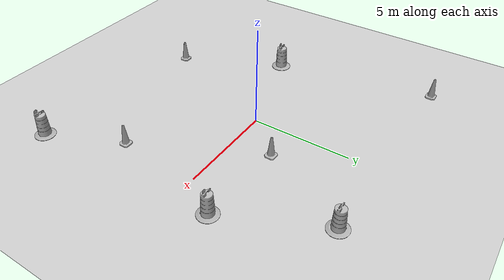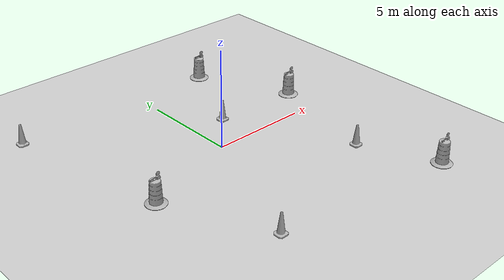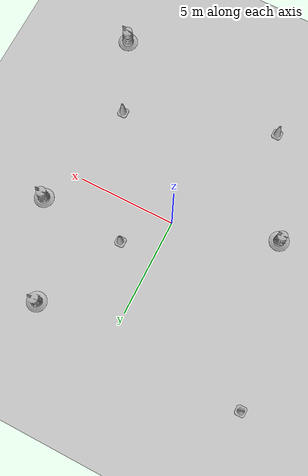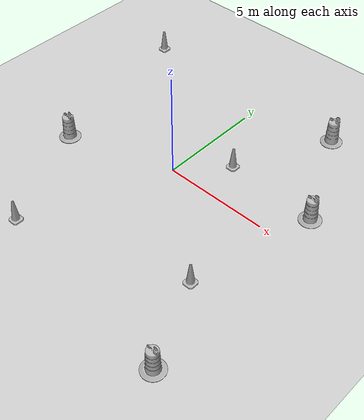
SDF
<sdf version="1.7">
 <world name="default">
  <light name="sun" type="directional">
   <pose>0 0 10 0 -0 0</pose>
   <diffuse>0.8 0.8 0.8 1</diffuse>
   <specular>0.2 0.2 0.2 1</specular>
   <attenuation>
    <range>1000</range>
    <constant>0.9</constant>
    <linear>0.01</linear>
    <quadratic>0.001</quadratic>
   </attenuation>
   <direction>-0.5 0.1 -0.9</direction>
   <spot><inner_angle>0</inner_angle><outer_angle>0</outer_angle><falloff>0</falloff></spot>
  </light>
  <model name="ground_plane">
   <static>1</static>
   <link name="link">
    <collision name="collision">
     <geometry><plane><normal>0 0 1</normal><size>100 100</size></plane></geometry>
     <surface>
      <contact><collide_bitmask>65535</collide_bitmask></contact>
      <friction><ode><mu>100</mu><mu2>50</mu2></ode></friction>
     </surface>
    </collision>
    <visual name="visual">
     <cast_shadows>0</cast_shadows>
     <geometry><plane><normal>0 0 1</normal><size>100 100</size></plane></geometry>
     <material>
      <script><uri>file://media/materials/scripts/gazebo.material</uri><name>Gazebo/Grey</name></script>
     </material>
    </visual>
   </link>
  </model>
  <gravity>0 0 -9.8</gravity>
  <magnetic_field>6e-06 2.3e-05 -4.2e-05</magnetic_field>
  <atmosphere type="adiabatic"/>
  <physics type="ode">
   <max_step_size>0.001</max_step_size>
   <real_time_factor>1</real_time_factor>
   <real_time_update_rate>1000</real_time_update_rate>
  </physics>
  <scene><ambient>0.4 0.4 0.4 1</ambient><background>0.7 0.7 0.7 1</background><shadows>1</shadows></scene>
  <audio><device>default</device></audio>
  <spherical_coordinates>
   <surface_model>EARTH_WGS84</surface_model>
   <latitude_deg>0</latitude_deg>
   <longitude_deg>0</longitude_deg>
   <elevation>0</elevation>
   <heading_deg>0</heading_deg>
  </spherical_coordinates>
  <model name="Construction Cone">
   <link name="link">
    <collision name="collision">
     <geometry>
      <mesh><scale>10 10 10</scale><uri>model://construction_cone/meshes/construction_cone.dae</uri></mesh>
     </geometry>
    </collision>
    <visual name="visual">
     <geometry>
      <mesh><scale>10 10 10</scale><uri>model://construction_cone/meshes/construction_cone.dae</uri></mesh>
     </geometry>
    </visual>
    <inertial>
     <inertia><ixx>1</ixx><ixy>0</ixy><ixz>0</ixz><iyy>1</iyy><iyz>0</iyz><izz>1</izz></inertia>
     <mass>1</mass>
    </inertial>
   </link>
   <pose>1.81685 1.98909 -9e-06 -1e-06 -0 -0</pose>
  </model>
  <model name="Construction Barrel">
   <link name="link">
    <inertial>
     <pose>0 0 0.4 0 -0 0</pose>
     <mass>500</mass>
     <inertia><ixx>51.2096</ixx><iyy>51.2096</iyy><izz>25</izz><ixy>0</ixy><ixz>0</ixz><iyz>0</iyz></inertia>
    </inertial>
    <collision name="collision">
     <geometry><mesh><uri>model://construction_barrel/meshes/construction_barrel.dae</uri></mesh></geometry>
    </collision>
    <visual name="visual">
     <geometry><mesh><uri>model://construction_barrel/meshes/construction_barrel.dae</uri></mesh></geometry>
    </visual>
   </link>
   <pose>4.01782 6.42471 -0 1e-06 -1e-06 -1.2e-05</pose>
  </model>
  <model name="Construction Barrel_0">
   <link name="link">
    <inertial>
     <pose>0 0 0.4 0 -0 0</pose>
     <mass>500</mass>
     <inertia><ixx>51.2096</ixx><iyy>51.2096</iyy><izz>25</izz><ixy>0</ixy><ixz>0</ixz><iyz>0</iyz></inertia>
    </inertial>
    <collision name="collision">
     <geometry><mesh><uri>model://construction_barrel/meshes/construction_barrel.dae</uri></mesh></geometry>
    </collision>
    <visual name="visual">
     <geometry><mesh><uri>model://construction_barrel/meshes/construction_barrel.dae</uri></mesh></geometry>
    </visual>
   </link>
   <pose>6.26332 1.73391 -1e-06 0 5e-06 -1e-05</pose>
  </model>
  <model name="Construction Cone_0">
   <link name="link">
    <collision name="collision">
     <geometry>
      <mesh><scale>10 10 10</scale><uri>model://construction_cone/meshes/construction_cone.dae</uri></mesh>
     </geometry>
    </collision>
    <visual name="visual">
     <geometry>
      <mesh><scale>10 10 10</scale><uri>model://construction_cone/meshes/construction_cone.dae</uri></mesh>
     </geometry>
    </visual>
    <inertial>
     <inertia><ixx>1</ixx><ixy>0</ixy><ixz>0</ixz><iyy>1</iyy><iyz>0</iyz><izz>1</izz></inertia>
     <mass>1</mass>
    </inertial>
   </link>
   <pose>4.89402 -4.11599 -1e-06 3e-06 -1e-06 0</pose>
  </model>
  <model name="Construction Barrel_1">
   <link name="link">
    <inertial>
     <pose>0 0 0.4 0 -0 0</pose>
     <mass>500</mass>
     <inertia><ixx>51.2096</ixx><iyy>51.2096</iyy><izz>25</izz><ixy>0</ixy><ixz>0</ixz><iyz>0</iyz></inertia>
    </inertial>
    <collision name="collision">
     <geometry><mesh><uri>model://construction_barrel/meshes/construction_barrel.dae</uri></mesh></geometry>
    </collision>
    <visual name="visual">
     <geometry><mesh><uri>model://construction_barrel/meshes/construction_barrel.dae</uri></mesh></geometry>
    </visual>
   </link>
   <pose>-5.10617 -1.58 -1e-06 3e-06 1e-05 -7e-06</pose>
  </model>
  <model name="Construction Barrel_2">
   <link name="link">
    <inertial>
     <pose>0 0 0.4 0 -0 0</pose>
     <mass>500</mass>
     <inertia><ixx>51.2096</ixx><iyy>51.2096</iyy><izz>25</izz><ixy>0</ixy><ixz>0</ixz><iyz>0</iyz></inertia>
    </inertial>
    <collision name="collision">
     <geometry><mesh><uri>model://construction_barrel/meshes/construction_barrel.dae</uri></mesh></geometry>
    </collision>
    <visual name="visual">
     <geometry><mesh><uri>model://construction_barrel/meshes/construction_barrel.dae</uri></mesh></geometry>
    </visual>
   </link>
   <pose>6.54665 -7.81968 1e-06 2e-06 3e-06 -6e-06</pose>
  </model>
  <model name="Construction Cone_1">
   <link name="link">
    <collision name="collision">
     <geometry>
      <mesh><scale>10 10 10</scale><uri>model://construction_cone/meshes/construction_cone.dae</uri></mesh>
     </geometry>
    </collision>
    <visual name="visual">
     <geometry>
      <mesh><scale>10 10 10</scale><uri>model://construction_cone/meshes/construction_cone.dae</uri></mesh>
     </geometry>
    </visual>
    <inertial>
     <inertia><ixx>1</ixx><ixy>0</ixy><ixz>0</ixz><iyy>1</iyy><iyz>0</iyz><izz>1</izz></inertia>
     <mass>1</mass>
    </inertial>
   </link>
   <pose>-6.86212 6.54579 -0 0 -0 0</pose>
  </model>
  <model name="Construction Cone_2">
   <link name="link">
    <collision name="collision">
     <geometry>
      <mesh><scale>10 10 10</scale><uri>model://construction_cone/meshes/construction_cone.dae</uri></mesh>
     </geometry>
    </collision>
    <visual name="visual">
     <geometry>
      <mesh><scale>10 10 10</scale><uri>model://construction_cone/meshes/construction_cone.dae</uri></mesh>
     </geometry>
    </visual>
    <inertial>
     <inertia><ixx>1</ixx><ixy>0</ixy><ixz>0</ixz><iyy>1</iyy><iyz>0</iyz><izz>1</izz></inertia>
     <mass>1</mass>
    </inertial>
   </link>
   <pose>-2.69267 -6.62423 -0 0 -1e-06 0</pose>
  </model>
 </world>
</sdf>
